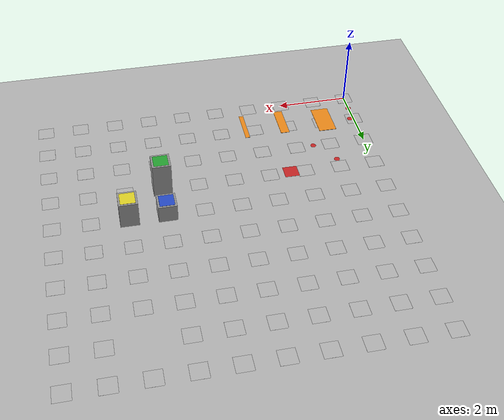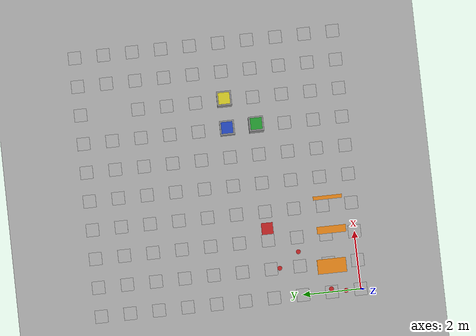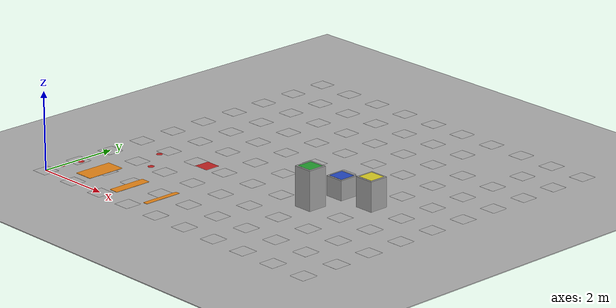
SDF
<sdf version="1.7">
 <world name="default">
  <model name="aruco_2_99">
   <static>1</static>
   <link name="aruco_2_99_link">
    <visual name="visual_marker_2_0">
     <pose>0 9 0 0 -0 1.5708</pose>
     <cast_shadows>0</cast_shadows>
     <geometry><box><size>0.44 0.44 0.001</size></box></geometry>
     <material>
      <script>
       <uri>model://aruco_cmit_txt/materials/scripts</uri>
       <uri>model://aruco_cmit_txt/materials/textures</uri>
       <name>aruco/marker_2_0</name>
      </script>
     </material>
    </visual>
    <visual name="visual_marker_2_1">
     <pose>1 9 0 0 -0 1.5708</pose>
     <cast_shadows>0</cast_shadows>
     <geometry><box><size>0.44 0.44 0.001</size></box></geometry>
     <material>
      <script>
       <uri>model://aruco_cmit_txt/materials/scripts</uri>
       <uri>model://aruco_cmit_txt/materials/textures</uri>
       <name>aruco/marker_2_1</name>
      </script>
     </material>
    </visual>
    <visual name="visual_marker_2_2">
     <pose>2 9 0 0 -0 1.5708</pose>
     <cast_shadows>0</cast_shadows>
     <geometry><box><size>0.44 0.44 0.001</size></box></geometry>
     <material>
      <script>
       <uri>model://aruco_cmit_txt/materials/scripts</uri>
       <uri>model://aruco_cmit_txt/materials/textures</uri>
       <name>aruco/marker_2_2</name>
      </script>
     </material>
    </visual>
    <visual name="visual_marker_2_3">
     <pose>3 9 0 0 -0 1.5708</pose>
     <cast_shadows>0</cast_shadows>
     <geometry><box><size>0.44 0.44 0.001</size></box></geometry>
     <material>
      <script>
       <uri>model://aruco_cmit_txt/materials/scripts</uri>
       <uri>model://aruco_cmit_txt/materials/textures</uri>
       <name>aruco/marker_2_3</name>
      </script>
     </material>
    </visual>
    <visual name="visual_marker_2_4">
     <pose>4 9 0 0 -0 1.5708</pose>
     <cast_shadows>0</cast_shadows>
     <geometry><box><size>0.44 0.44 0.001</size></box></geometry>
     <material>
      <script>
       <uri>model://aruco_cmit_txt/materials/scripts</uri>
       <uri>model://aruco_cmit_txt/materials/textures</uri>
       <name>aruco/marker_2_4</name>
      </script>
     </material>
    </visual>
    <visual name="visual_marker_2_5">
     <pose>5 9 0 0 -0 1.5708</pose>
     <cast_shadows>0</cast_shadows>
     <geometry><box><size>0.44 0.44 0.001</size></box></geometry>
     <material>
      <script>
       <uri>model://aruco_cmit_txt/materials/scripts</uri>
       <uri>model://aruco_cmit_txt/materials/textures</uri>
       <name>aruco/marker_2_5</name>
      </script>
     </material>
    </visual>
    <visual name="visual_marker_2_6">
     <pose>6 9 0 0 -0 1.5708</pose>
     <cast_shadows>0</cast_shadows>
     <geometry><box><size>0.44 0.44 0.001</size></box></geometry>
     <material>
      <script>
       <uri>model://aruco_cmit_txt/materials/scripts</uri>
       <uri>model://aruco_cmit_txt/materials/textures</uri>
       <name>aruco/marker_2_6</name>
      </script>
     </material>
    </visual>
    <visual name="visual_marker_2_7">
     <pose>7 9 0 0 -0 1.5708</pose>
     <cast_shadows>0</cast_shadows>
     <geometry><box><size>0.44 0.44 0.001</size></box></geometry>
     <material>
      <script>
       <uri>model://aruco_cmit_txt/materials/scripts</uri>
       <uri>model://aruco_cmit_txt/materials/textures</uri>
       <name>aruco/marker_2_7</name>
      </script>
     </material>
    </visual>
    <visual name="visual_marker_2_8">
     <pose>8 9 0 0 -0 1.5708</pose>
     <cast_shadows>0</cast_shadows>
     <geometry><box><size>0.44 0.44 0.001</size></box></geometry>
     <material>
      <script>
       <uri>model://aruco_cmit_txt/materials/scripts</uri>
       <uri>model://aruco_cmit_txt/materials/textures</uri>
       <name>aruco/marker_2_8</name>
      </script>
     </material>
    </visual>
    <visual name="visual_marker_2_9">
     <pose>9 9 0 0 -0 1.5708</pose>
     <cast_shadows>0</cast_shadows>
     <geometry><box><size>0.44 0.44 0.001</size></box></geometry>
     <material>
      <script>
       <uri>model://aruco_cmit_txt/materials/scripts</uri>
       <uri>model://aruco_cmit_txt/materials/textures</uri>
       <name>aruco/marker_2_9</name>
      </script>
     </material>
    </visual>
    <visual name="visual_marker_2_10">
     <pose>0 8 0 0 -0 1.5708</pose>
     <cast_shadows>0</cast_shadows>
     <geometry><box><size>0.44 0.44 0.001</size></box></geometry>
     <material>
      <script>
       <uri>model://aruco_cmit_txt/materials/scripts</uri>
       <uri>model://aruco_cmit_txt/materials/textures</uri>
       <name>aruco/marker_2_10</name>
      </script>
     </material>
    </visual>
    <visual name="visual_marker_2_11">
     <pose>1 8 0 0 -0 1.5708</pose>
     <cast_shadows>0</cast_shadows>
     <geometry><box><size>0.44 0.44 0.001</size></box></geometry>
     <material>
      <script>
       <uri>model://aruco_cmit_txt/materials/scripts</uri>
       <uri>model://aruco_cmit_txt/materials/textures</uri>
       <name>aruco/marker_2_11</name>
      </script>
     </material>
    </visual>
    <visual name="visual_marker_2_12">
     <pose>2 8 0 0 -0 1.5708</pose>
     <cast_shadows>0</cast_shadows>
     <geometry><box><size>0.44 0.44 0.001</size></box></geometry>
     <material>
      <script>
       <uri>model://aruco_cmit_txt/materials/scripts</uri>
       <uri>model://aruco_cmit_txt/materials/textures</uri>
       <name>aruco/marker_2_12</name>
      </script>
     </material>
    </visual>
    <visual name="visual_marker_2_13">
     <pose>3 8 0 0 -0 1.5708</pose>
     <cast_shadows>0</cast_shadows>
     <geometry><box><size>0.44 0.44 0.001</size></box></geometry>
     <material>
      <script>
       <uri>model://aruco_cmit_txt/materials/scripts</uri>
       <uri>model://aruco_cmit_txt/materials/textures</uri>
       <name>aruco/marker_2_13</name>
      </script>
     </material>
    </visual>
    <visual name="visual_marker_2_14">
     <pose>4 8 0 0 -0 1.5708</pose>
     <cast_shadows>0</cast_shadows>
     <geometry><box><size>0.44 0.44 0.001</size></box></geometry>
     <material>
      <script>
       <uri>model://aruco_cmit_txt/materials/scripts</uri>
       <uri>model://aruco_cmit_txt/materials/textures</uri>
       <name>aruco/marker_2_14</name>
      </script>
     </material>
    </visual>
    <visual name="visual_marker_2_15">
     <pose>5 8 0 0 -0 1.5708</pose>
     <cast_shadows>0</cast_shadows>
     <geometry><box><size>0.44 0.44 0.001</size></box></geometry>
     <material>
      <script>
       <uri>model://aruco_cmit_txt/materials/scripts</uri>
       <uri>model://aruco_cmit_txt/materials/textures</uri>
       <name>aruco/marker_2_15</name>
      </script>
     </material>
    </visual>
    <visual name="visual_marker_2_16">
     <pose>6 8 0 0 -0 1.5708</pose>
     <cast_shadows>0</cast_shadows>
     <geometry><box><size>0.44 0.44 0.001</size></box></geometry>
     <material>
      <script>
       <uri>model://aruco_cmit_txt/materials/scripts</uri>
       <uri>model://aruco_cmit_txt/materials/textures</uri>
       <name>aruco/marker_2_16</name>
      </script>
     </material>
    </visual>
    <visual name="visual_marker_2_18">
     <pose>8 8 0 0 -0 1.5708</pose>
     <cast_shadows>0</cast_shadows>
     <geometry><box><size>0.44 0.44 0.001</size></box></geometry>
     <material>
      <script>
       <uri>model://aruco_cmit_txt/materials/scripts</uri>
       <uri>model://aruco_cmit_txt/materials/textures</uri>
       <name>aruco/marker_2_18</name>
      </script>
     </material>
    </visual>
    <visual name="visual_marker_2_19">
     <pose>9 8 0 0 -0 1.5708</pose>
     <cast_shadows>0</cast_shadows>
     <geometry><box><size>0.44 0.44 0.001</size></box></geometry>
     <material>
      <script>
       <uri>model://aruco_cmit_txt/materials/scripts</uri>
       <uri>model://aruco_cmit_txt/materials/textures</uri>
       <name>aruco/marker_2_19</name>
      </script>
     </material>
    </visual>
    <visual name="visual_marker_2_20">
     <pose>0 7 0 0 -0 1.5708</pose>
     <cast_shadows>0</cast_shadows>
     <geometry><box><size>0.44 0.44 0.001</size></box></geometry>
     <material>
      <script>
       <uri>model://aruco_cmit_txt/materials/scripts</uri>
       <uri>model://aruco_cmit_txt/materials/textures</uri>
       <name>aruco/marker_2_20</name>
      </script>
     </material>
    </visual>
    <visual name="visual_marker_2_21">
     <pose>1 7 0 0 -0 1.5708</pose>
     <cast_shadows>0</cast_shadows>
     <geometry><box><size>0.44 0.44 0.001</size></box></geometry>
     <material>
      <script>
       <uri>model://aruco_cmit_txt/materials/scripts</uri>
       <uri>model://aruco_cmit_txt/materials/textures</uri>
       <name>aruco/marker_2_21</name>
      </script>
     </material>
    </visual>
    <visual name="visual_marker_2_22">
     <pose>2 7 0 0 -0 1.5708</pose>
     <cast_shadows>0</cast_shadows>
     <geometry><box><size>0.44 0.44 0.001</size></box></geometry>
     <material>
      <script>
       <uri>model://aruco_cmit_txt/materials/scripts</uri>
       <uri>model://aruco_cmit_txt/materials/textures</uri>
       <name>aruco/marker_2_22</name>
      </script>
     </material>
    </visual>
    <visual name="visual_marker_2_23">
     <pose>3 7 0 0 -0 1.5708</pose>
     <cast_shadows>0</cast_shadows>
     <geometry><box><size>0.44 0.44 0.001</size></box></geometry>
     <material>
      <script>
       <uri>model://aruco_cmit_txt/materials/scripts</uri>
       <uri>model://aruco_cmit_txt/materials/textures</uri>
       <name>aruco/marker_2_23</name>
      </script>
     </material>
    </visual>
    <visual name="visual_marker_2_24">
     <pose>4 7 0 0 -0 1.5708</pose>
     <cast_shadows>0</cast_shadows>
     <geometry><box><size>0.44 0.44 0.001</size></box></geometry>
     <material>
      <script>
       <uri>model://aruco_cmit_txt/materials/scripts</uri>
       <uri>model://aruco_cmit_txt/materials/textures</uri>
       <name>aruco/marker_2_24</name>
      </script>
     </material>
    </visual>
    <visual name="visual_marker_2_25">
     <pose>5 7 0 0 -0 1.5708</pose>
     <cast_shadows>0</cast_shadows>
     <geometry><box><size>0.44 0.44 0.001</size></box></geometry>
     <material>
      <script>
       <uri>model://aruco_cmit_txt/materials/scripts</uri>
       <uri>model://aruco_cmit_txt/materials/textures</uri>
       <name>aruco/marker_2_25</name>
      </script>
     </material>
    </visual>
    <visual name="visual_marker_2_26">
     <pose>6 7 0 0 -0 1.5708</pose>
     <cast_shadows>0</cast_shadows>
     <geometry><box><size>0.44 0.44 0.001</size></box></geometry>
     <material>
      <script>
       <uri>model://aruco_cmit_txt/materials/scripts</uri>
       <uri>model://aruco_cmit_txt/materials/textures</uri>
       <name>aruco/marker_2_26</name>
      </script>
     </material>
    </visual>
    <visual name="visual_marker_2_27">
     <pose>7 7 0 0 -0 1.5708</pose>
     <cast_shadows>0</cast_shadows>
     <geometry><box><size>0.44 0.44 0.001</size></box></geometry>
     <material>
      <script>
       <uri>model://aruco_cmit_txt/materials/scripts</uri>
       <uri>model://aruco_cmit_txt/materials/textures</uri>
       <name>aruco/marker_2_27</name>
      </script>
     </material>
    </visual>
    <visual name="visual_marker_2_28">
     <pose>8 7 0 0 -0 1.5708</pose>
     <cast_shadows>0</cast_shadows>
     <geometry><box><size>0.44 0.44 0.001</size></box></geometry>
     <material>
      <script>
       <uri>model://aruco_cmit_txt/materials/scripts</uri>
       <uri>model://aruco_cmit_txt/materials/textures</uri>
       <name>aruco/marker_2_28</name>
      </script>
     </material>
    </visual>
    <visual name="visual_marker_2_29">
     <pose>9 7 0 0 -0 1.5708</pose>
     <cast_shadows>0</cast_shadows>
     <geometry><box><size>0.44 0.44 0.001</size></box></geometry>
     <material>
      <script>
       <uri>model://aruco_cmit_txt/materials/scripts</uri>
       <uri>model://aruco_cmit_txt/materials/textures</uri>
       <name>aruco/marker_2_29</name>
      </script>
     </material>
    </visual>
    <visual name="visual_marker_2_30">
     <pose>0 6 0 0 -0 1.5708</pose>
     <cast_shadows>0</cast_shadows>
     <geometry><box><size>0.44 0.44 0.001</size></box></geometry>
     <material>
      <script>
       <uri>model://aruco_cmit_txt/materials/scripts</uri>
       <uri>model://aruco_cmit_txt/materials/textures</uri>
       <name>aruco/marker_2_30</name>
      </script>
     </material>
    </visual>
    <visual name="visual_marker_2_31">
     <pose>1 6 0 0 -0 1.5708</pose>
     <cast_shadows>0</cast_shadows>
     <geometry><box><size>0.44 0.44 0.001</size></box></geometry>
     <material>
      <script>
       <uri>model://aruco_cmit_txt/materials/scripts</uri>
       <uri>model://aruco_cmit_txt/materials/textures</uri>
       <name>aruco/marker_2_31</name>
      </script>
     </material>
    </visual>
    <visual name="visual_marker_2_32">
     <pose>2 6 0 0 -0 1.5708</pose>
     <cast_shadows>0</cast_shadows>
     <geometry><box><size>0.44 0.44 0.001</size></box></geometry>
     <material>
      <script>
       <uri>model://aruco_cmit_txt/materials/scripts</uri>
       <uri>model://aruco_cmit_txt/materials/textures</uri>
       <name>aruco/marker_2_32</name>
      </script>
     </material>
    </visual>
    <visual name="visual_marker_2_33">
     <pose>3 6 0 0 -0 1.5708</pose>
     <cast_shadows>0</cast_shadows>
     <geometry><box><size>0.44 0.44 0.001</size></box></geometry>
     <material>
      <script>
       <uri>model://aruco_cmit_txt/materials/scripts</uri>
       <uri>model://aruco_cmit_txt/materials/textures</uri>
       <name>aruco/marker_2_33</name>
      </script>
     </material>
    </visual>
    <visual name="visual_marker_2_34">
     <pose>4 6 0 0 -0 1.5708</pose>
     <cast_shadows>0</cast_shadows>
     <geometry><box><size>0.44 0.44 0.001</size></box></geometry>
     <material>
      <script>
       <uri>model://aruco_cmit_txt/materials/scripts</uri>
       <uri>model://aruco_cmit_txt/materials/textures</uri>
       <name>aruco/marker_2_34</name>
      </script>
     </material>
    </visual>
    <visual name="visual_marker_2_35">
     <pose>5 6 0 0 -0 1.5708</pose>
     <cast_shadows>0</cast_shadows>
     <geometry><box><size>0.44 0.44 0.001</size></box></geometry>
     <material>
      <script>
       <uri>model://aruco_cmit_txt/materials/scripts</uri>
       <uri>model://aruco_cmit_txt/materials/textures</uri>
       <name>aruco/marker_2_35</name>
      </script>
     </material>
    </visual>
    <visual name="visual_marker_2_36">
     <pose>6 6 0 0 -0 1.5708</pose>
     <cast_shadows>0</cast_shadows>
     <geometry><box><size>0.44 0.44 0.001</size></box></geometry>
     <material>
      <script>
       <uri>model://aruco_cmit_txt/materials/scripts</uri>
       <uri>model://aruco_cmit_txt/materials/textures</uri>
       <name>aruco/marker_2_36</name>
      </script>
     </material>
    </visual>
    <visual name="visual_marker_2_37">
     <pose>7 6 0 0 -0 1.5708</pose>
     <cast_shadows>0</cast_shadows>
     <geometry><box><size>0.44 0.44 0.001</size></box></geometry>
     <material>
      <script>
       <uri>model://aruco_cmit_txt/materials/scripts</uri>
       <uri>model://aruco_cmit_txt/materials/textures</uri>
       <name>aruco/marker_2_37</name>
      </script>
     </material>
    </visual>
    <visual name="visual_marker_2_38">
     <pose>8 6 0 0 -0 1.5708</pose>
     <cast_shadows>0</cast_shadows>
     <geometry><box><size>0.44 0.44 0.001</size></box></geometry>
     <material>
      <script>
       <uri>model://aruco_cmit_txt/materials/scripts</uri>
       <uri>model://aruco_cmit_txt/materials/textures</uri>
       <name>aruco/marker_2_38</name>
      </script>
     </material>
    </visual>
    <visual name="visual_marker_2_39">
     <pose>9 6 0 0 -0 1.5708</pose>
     <cast_shadows>0</cast_shadows>
     <geometry><box><size>0.44 0.44 0.001</size></box></geometry>
     <material>
      <script>
       <uri>model://aruco_cmit_txt/materials/scripts</uri>
       <uri>model://aruco_cmit_txt/materials/textures</uri>
       <name>aruco/marker_2_39</name>
      </script>
     </material>
    </visual>
    <visual name="visual_marker_2_40">
     <pose>0 5 0 0 -0 1.5708</pose>
     <cast_shadows>0</cast_shadows>
     <geometry><box><size>0.44 0.44 0.001</size></box></geometry>
     <material>
      <script>
       <uri>model://aruco_cmit_txt/materials/scripts</uri>
       <uri>model://aruco_cmit_txt/materials/textures</uri>
       <name>aruco/marker_2_40</name>
      </script>
     </material>
    </visual>
    <visual name="visual_marker_2_41">
     <pose>1 5 0 0 -0 1.5708</pose>
     <cast_shadows>0</cast_shadows>
     <geometry><box><size>0.44 0.44 0.001</size></box></geometry>
     <material>
      <script>
       <uri>model://aruco_cmit_txt/materials/scripts</uri>
       <uri>model://aruco_cmit_txt/materials/textures</uri>
       <name>aruco/marker_2_41</name>
      </script>
     </material>
    </visual>
    <visual name="visual_marker_2_42">
     <pose>2 5 0 0 -0 1.5708</pose>
     <cast_shadows>0</cast_shadows>
     <geometry><box><size>0.44 0.44 0.001</size></box></geometry>
     <material>
      <script>
       <uri>model://aruco_cmit_txt/materials/scripts</uri>
       <uri>model://aruco_cmit_txt/materials/textures</uri>
       <name>aruco/marker_2_42</name>
      </script>
     </material>
    </visual>
    <visual name="visual_marker_2_43">
     <pose>3 5 0 0 -0 1.5708</pose>
     <cast_shadows>0</cast_shadows>
     <geometry><box><size>0.44 0.44 0.001</size></box></geometry>
     <material>
      <script>
       <uri>model://aruco_cmit_txt/materials/scripts</uri>
       <uri>model://aruco_cmit_txt/materials/textures</uri>
       <name>aruco/marker_2_43</name>
      </script>
     </material>
    </visual>
    <visual name="visual_marker_2_44">
     <pose>4 5 0 0 -0 1.5708</pose>
     <cast_shadows>0</cast_shadows>
     <geometry><box><size>0.44 0.44 0.001</size></box></geometry>
     <material>
      <script>
       <uri>model://aruco_cmit_txt/materials/scripts</uri>
       <uri>model://aruco_cmit_txt/materials/textures</uri>
       <name>aruco/marker_2_44</name>
      </script>
     </material>
    </visual>
    <visual name="visual_marker_2_45">
     <pose>5 5 0 0 -0 1.5708</pose>
     <cast_shadows>0</cast_shadows>
     <geometry><box><size>0.44 0.44 0.001</size></box></geometry>
     <material>
      <script>
       <uri>model://aruco_cmit_txt/materials/scripts</uri>
       <uri>model://aruco_cmit_txt/materials/textures</uri>
       <name>aruco/marker_2_45</name>
      </script>
     </material>
    </visual>
    <visual name="visual_marker_2_46">
     <pose>6 5 0 0 -0 1.5708</pose>
     <cast_shadows>0</cast_shadows>
     <geometry><box><size>0.44 0.44 0.001</size></box></geometry>
     <material>
      <script>
       <uri>model://aruco_cmit_txt/materials/scripts</uri>
       <uri>model://aruco_cmit_txt/materials/textures</uri>
       <name>aruco/marker_2_46</name>
      </script>
     </material>
    </visual>
    <visual name="visual_marker_2_47">
     <pose>7 5 0 0 -0 1.5708</pose>
     <cast_shadows>0</cast_shadows>
     <geometry><box><size>0.44 0.44 0.001</size></box></geometry>
     <material>
      <script>
       <uri>model://aruco_cmit_txt/materials/scripts</uri>
       <uri>model://aruco_cmit_txt/materials/textures</uri>
       <name>aruco/marker_2_47</name>
      </script>
     </material>
    </visual>
    <visual name="visual_marker_2_48">
     <pose>8 5 0 0 -0 1.5708</pose>
     <cast_shadows>0</cast_shadows>
     <geometry><box><size>0.44 0.44 0.001</size></box></geometry>
     <material>
      <script>
       <uri>model://aruco_cmit_txt/materials/scripts</uri>
       <uri>model://aruco_cmit_txt/materials/textures</uri>
       <name>aruco/marker_2_48</name>
      </script>
     </material>
    </visual>
    <visual name="visual_marker_2_49">
     <pose>9 5 0 0 -0 1.5708</pose>
     <cast_shadows>0</cast_shadows>
     <geometry><box><size>0.44 0.44 0.001</size></box></geometry>
     <material>
      <script>
       <uri>model://aruco_cmit_txt/materials/scripts</uri>
       <uri>model://aruco_cmit_txt/materials/textures</uri>
       <name>aruco/marker_2_49</name>
      </script>
     </material>
    </visual>
    <visual name="visual_marker_2_50">
     <pose>0 4 0 0 -0 1.5708</pose>
     <cast_shadows>0</cast_shadows>
     <geometry><box><size>0.44 0.44 0.001</size></box></geometry>
     <material>
      <script>
       <uri>model://aruco_cmit_txt/materials/scripts</uri>
       <uri>model://aruco_cmit_txt/materials/textures</uri>
       <name>aruco/marker_2_50</name>
      </script>
     </material>
    </visual>
    <visual name="visual_marker_2_51">
     <pose>1 4 0 0 -0 1.5708</pose>
     <cast_shadows>0</cast_shadows>
     <geometry><box><size>0.44 0.44 0.001</size></box></geometry>
     <material>
      <script>
       <uri>model://aruco_cmit_txt/materials/scripts</uri>
       <uri>model://aruco_cmit_txt/materials/textures</uri>
       <name>aruco/marker_2_51</name>
      </script>
     </material>
    </visual>
    <visual name="visual_marker_2_52">
     <pose>2 4 0 0 -0 1.5708</pose>
     <cast_shadows>0</cast_shadows>
     <geometry><box><size>0.44 0.44 0.001</size></box></geometry>
     <material>
      <script>
       <uri>model://aruco_cmit_txt/materials/scripts</uri>
       <uri>model://aruco_cmit_txt/materials/textures</uri>
       <name>aruco/marker_2_52</name>
      </script>
     </material>
    </visual>
    <visual name="visual_marker_2_53">
     <pose>3 4 0 0 -0 1.5708</pose>
     <cast_shadows>0</cast_shadows>
     <geometry><box><size>0.44 0.44 0.001</size></box></geometry>
     <material>
      <script>
       <uri>model://aruco_cmit_txt/materials/scripts</uri>
       <uri>model://aruco_cmit_txt/materials/textures</uri>
       <name>aruco/marker_2_53</name>
      </script>
     </material>
    </visual>
    <visual name="visual_marker_2_54">
     <pose>4 4 0 0 -0 1.5708</pose>
     <cast_shadows>0</cast_shadows>
     <geometry><box><size>0.44 0.44 0.001</size></box></geometry>
     <material>
      <script>
       <uri>model://aruco_cmit_txt/materials/scripts</uri>
       <uri>model://aruco_cmit_txt/materials/textures</uri>
       <name>aruco/marker_2_54</name>
      </script>
     </material>
    </visual>
    <visual name="visual_marker_2_55">
     <pose>5 4 0 0 -0 1.5708</pose>
     <cast_shadows>0</cast_shadows>
     <geometry><box><size>0.44 0.44 0.001</size></box></geometry>
     <material>
      <script>
       <uri>model://aruco_cmit_txt/materials/scripts</uri>
       <uri>model://aruco_cmit_txt/materials/textures</uri>
       <name>aruco/marker_2_55</name>
      </script>
     </material>
    </visual>
    <visual name="visual_marker_2_56">
     <pose>6 4 0 0 -0 1.5708</pose>
     <cast_shadows>0</cast_shadows>
     <geometry><box><size>0.44 0.44 0.001</size></box></geometry>
     <material>
      <script>
       <uri>model://aruco_cmit_txt/materials/scripts</uri>
       <uri>model://aruco_cmit_txt/materials/textures</uri>
       <name>aruco/marker_2_56</name>
      </script>
     </material>
    </visual>
    <visual name="visual_marker_2_57">
     <pose>7 4 0 0 -0 1.5708</pose>
     <cast_shadows>0</cast_shadows>
     <geometry><box><size>0.44 0.44 0.001</size></box></geometry>
     <material>
      <script>
       <uri>model://aruco_cmit_txt/materials/scripts</uri>
       <uri>model://aruco_cmit_txt/materials/textures</uri>
       <name>aruco/marker_2_57</name>
      </script>
     </material>
    </visual>
    <visual name="visual_marker_2_58">
     <pose>8 4 0 0 -0 1.5708</pose>
     <cast_shadows>0</cast_shadows>
     <geometry><box><size>0.44 0.44 0.001</size></box></geometry>
     <material>
      <script>
       <uri>model://aruco_cmit_txt/materials/scripts</uri>
       <uri>model://aruco_cmit_txt/materials/textures</uri>
       <name>aruco/marker_2_58</name>
      </script>
     </material>
    </visual>
    <visual name="visual_marker_2_59">
     <pose>9 4 0 0 -0 1.5708</pose>
     <cast_shadows>0</cast_shadows>
     <geometry><box><size>0.44 0.44 0.001</size></box></geometry>
     <material>
      <script>
       <uri>model://aruco_cmit_txt/materials/scripts</uri>
       <uri>model://aruco_cmit_txt/materials/textures</uri>
       <name>aruco/marker_2_59</name>
      </script>
     </material>
    </visual>
    <visual name="visual_marker_2_60">
     <pose>0 3 0 0 -0 1.5708</pose>
     <cast_shadows>0</cast_shadows>
     <geometry><box><size>0.44 0.44 0.001</size></box></geometry>
     <material>
      <script>
       <uri>model://aruco_cmit_txt/materials/scripts</uri>
       <uri>model://aruco_cmit_txt/materials/textures</uri>
       <name>aruco/marker_2_60</name>
      </script>
     </material>
    </visual>
    <visual name="visual_marker_2_61">
     <pose>1 3 0 0 -0 1.5708</pose>
     <cast_shadows>0</cast_shadows>
     <geometry><box><size>0.44 0.44 0.001</size></box></geometry>
     <material>
      <script>
       <uri>model://aruco_cmit_txt/materials/scripts</uri>
       <uri>model://aruco_cmit_txt/materials/textures</uri>
       <name>aruco/marker_2_61</name>
      </script>
     </material>
    </visual>
    <visual name="visual_marker_2_62">
     <pose>2 3 0 0 -0 1.5708</pose>
     <cast_shadows>0</cast_shadows>
     <geometry><box><size>0.44 0.44 0.001</size></box></geometry>
     <material>
      <script>
       <uri>model://aruco_cmit_txt/materials/scripts</uri>
       <uri>model://aruco_cmit_txt/materials/textures</uri>
       <name>aruco/marker_2_62</name>
      </script>
     </material>
    </visual>
    <visual name="visual_marker_2_63">
     <pose>3 3 0 0 -0 1.5708</pose>
     <cast_shadows>0</cast_shadows>
     <geometry><box><size>0.44 0.44 0.001</size></box></geometry>
     <material>
      <script>
       <uri>model://aruco_cmit_txt/materials/scripts</uri>
       <uri>model://aruco_cmit_txt/materials/textures</uri>
       <name>aruco/marker_2_63</name>
      </script>
     </material>
    </visual>
    <visual name="visual_marker_2_64">
     <pose>4 3 0 0 -0 1.5708</pose>
     <cast_shadows>0</cast_shadows>
     <geometry><box><size>0.44 0.44 0.001</size></box></geometry>
     <material>
      <script>
       <uri>model://aruco_cmit_txt/materials/scripts</uri>
       <uri>model://aruco_cmit_txt/materials/textures</uri>
       <name>aruco/marker_2_64</name>
      </script>
     </material>
    </visual>
    <visual name="visual_marker_2_65">
     <pose>5 3 0 0 -0 1.5708</pose>
     <cast_shadows>0</cast_shadows>
     <geometry><box><size>0.44 0.44 0.001</size></box></geometry>
     <material>
      <script>
       <uri>model://aruco_cmit_txt/materials/scripts</uri>
       <uri>model://aruco_cmit_txt/materials/textures</uri>
       <name>aruco/marker_2_65</name>
      </script>
     </material>
    </visual>
    <visual name="visual_marker_2_66">
     <pose>6 3 0 0 -0 1.5708</pose>
     <cast_shadows>0</cast_shadows>
     <geometry><box><size>0.44 0.44 0.001</size></box></geometry>
     <material>
      <script>
       <uri>model://aruco_cmit_txt/materials/scripts</uri>
       <uri>model://aruco_cmit_txt/materials/textures</uri>
       <name>aruco/marker_2_66</name>
      </script>
     </material>
    </visual>
    <visual name="visual_marker_2_67">
     <pose>7 3 0 0 -0 1.5708</pose>
     <cast_shadows>0</cast_shadows>
     <geometry><box><size>0.44 0.44 0.001</size></box></geometry>
     <material>
      <script>
       <uri>model://aruco_cmit_txt/materials/scripts</uri>
       <uri>model://aruco_cmit_txt/materials/textures</uri>
       <name>aruco/marker_2_67</name>
      </script>
     </material>
    </visual>
    <visual name="visual_marker_2_68">
     <pose>8 3 0 0 -0 1.5708</pose>
     <cast_shadows>0</cast_shadows>
     <geometry><box><size>0.44 0.44 0.001</size></box></geometry>
     <material>
      <script>
       <uri>model://aruco_cmit_txt/materials/scripts</uri>
       <uri>model://aruco_cmit_txt/materials/textures</uri>
       <name>aruco/marker_2_68</name>
      </script>
     </material>
    </visual>
    <visual name="visual_marker_2_69">
     <pose>9 3 0 0 -0 1.5708</pose>
     <cast_shadows>0</cast_shadows>
     <geometry><box><size>0.44 0.44 0.001</size></box></geometry>
     <material>
      <script>
       <uri>model://aruco_cmit_txt/materials/scripts</uri>
       <uri>model://aruco_cmit_txt/materials/textures</uri>
       <name>aruco/marker_2_69</name>
      </script>
     </material>
    </visual>
    <visual name="visual_marker_2_70">
     <pose>0 2 0 0 -0 1.5708</pose>
     <cast_shadows>0</cast_shadows>
     <geometry><box><size>0.44 0.44 0.001</size></box></geometry>
     <material>
      <script>
       <uri>model://aruco_cmit_txt/materials/scripts</uri>
       <uri>model://aruco_cmit_txt/materials/textures</uri>
       <name>aruco/marker_2_70</name>
      </script>
     </material>
    </visual>
    <visual name="visual_marker_2_71">
     <pose>1 2 0 0 -0 1.5708</pose>
     <cast_shadows>0</cast_shadows>
     <geometry><box><size>0.44 0.44 0.001</size></box></geometry>
     <material>
      <script>
       <uri>model://aruco_cmit_txt/materials/scripts</uri>
       <uri>model://aruco_cmit_txt/materials/textures</uri>
       <name>aruco/marker_2_71</name>
      </script>
     </material>
    </visual>
    <visual name="visual_marker_2_72">
     <pose>2 2 0 0 -0 1.5708</pose>
     <cast_shadows>0</cast_shadows>
     <geometry><box><size>0.44 0.44 0.001</size></box></geometry>
     <material>
      <script>
       <uri>model://aruco_cmit_txt/materials/scripts</uri>
       <uri>model://aruco_cmit_txt/materials/textures</uri>
       <name>aruco/marker_2_72</name>
      </script>
     </material>
    </visual>
    <visual name="visual_marker_2_73">
     <pose>3 2 0 0 -0 1.5708</pose>
     <cast_shadows>0</cast_shadows>
     <geometry><box><size>0.44 0.44 0.001</size></box></geometry>
     <material>
      <script>
       <uri>model://aruco_cmit_txt/materials/scripts</uri>
       <uri>model://aruco_cmit_txt/materials/textures</uri>
       <name>aruco/marker_2_73</name>
      </script>
     </material>
    </visual>
    <visual name="visual_marker_2_74">
     <pose>4 2 0 0 -0 1.5708</pose>
     <cast_shadows>0</cast_shadows>
     <geometry><box><size>0.44 0.44 0.001</size></box></geometry>
     <material>
      <script>
       <uri>model://aruco_cmit_txt/materials/scripts</uri>
       <uri>model://aruco_cmit_txt/materials/textures</uri>
       <name>aruco/marker_2_74</name>
      </script>
     </material>
    </visual>
    <visual name="visual_marker_2_75">
     <pose>5 2 0 0 -0 1.5708</pose>
     <cast_shadows>0</cast_shadows>
     <geometry><box><size>0.44 0.44 0.001</size></box></geometry>
     <material>
      <script>
       <uri>model://aruco_cmit_txt/materials/scripts</uri>
       <uri>model://aruco_cmit_txt/materials/textures</uri>
       <name>aruco/marker_2_75</name>
      </script>
     </material>
    </visual>
    <visual name="visual_marker_2_76">
     <pose>6 2 0 0 -0 1.5708</pose>
     <cast_shadows>0</cast_shadows>
     <geometry><box><size>0.44 0.44 0.001</size></box></geometry>
     <material>
      <script>
       <uri>model://aruco_cmit_txt/materials/scripts</uri>
       <uri>model://aruco_cmit_txt/materials/textures</uri>
       <name>aruco/marker_2_76</name>
      </script>
     </material>
    </visual>
    <visual name="visual_marker_2_77">
     <pose>7 2 0 0 -0 1.5708</pose>
     <cast_shadows>0</cast_shadows>
     <geometry><box><size>0.44 0.44 0.001</size></box></geometry>
     <material>
      <script>
       <uri>model://aruco_cmit_txt/materials/scripts</uri>
       <uri>model://aruco_cmit_txt/materials/textures</uri>
       <name>aruco/marker_2_77</name>
      </script>
     </material>
    </visual>
    <visual name="visual_marker_2_78">
     <pose>8 2 0 0 -0 1.5708</pose>
     <cast_shadows>0</cast_shadows>
     <geometry><box><size>0.44 0.44 0.001</size></box></geometry>
     <material>
      <script>
       <uri>model://aruco_cmit_txt/materials/scripts</uri>
       <uri>model://aruco_cmit_txt/materials/textures</uri>
       <name>aruco/marker_2_78</name>
      </script>
     </material>
    </visual>
    <visual name="visual_marker_2_79">
     <pose>9 2 0 0 -0 1.5708</pose>
     <cast_shadows>0</cast_shadows>
     <geometry><box><size>0.44 0.44 0.001</size></box></geometry>
     <material>
      <script>
       <uri>model://aruco_cmit_txt/materials/scripts</uri>
       <uri>model://aruco_cmit_txt/materials/textures</uri>
       <name>aruco/marker_2_79</name>
      </script>
     </material>
    </visual>
    <visual name="visual_marker_2_80">
     <pose>0 1 0 0 -0 1.5708</pose>
     <cast_shadows>0</cast_shadows>
     <geometry><box><size>0.44 0.44 0.001</size></box></geometry>
     <material>
      <script>
       <uri>model://aruco_cmit_txt/materials/scripts</uri>
       <uri>model://aruco_cmit_txt/materials/textures</uri>
       <name>aruco/marker_2_80</name>
      </script>
     </material>
    </visual>
    <visual name="visual_marker_2_81">
     <pose>1 1 0 0 -0 1.5708</pose>
     <cast_shadows>0</cast_shadows>
     <geometry><box><size>0.44 0.44 0.001</size></box></geometry>
     <material>
      <script>
       <uri>model://aruco_cmit_txt/materials/scripts</uri>
       <uri>model://aruco_cmit_txt/materials/textures</uri>
       <name>aruco/marker_2_81</name>
      </script>
     </material>
    </visual>
    <visual name="visual_marker_2_82">
     <pose>2 1 0 0 -0 1.5708</pose>
     <cast_shadows>0</cast_shadows>
     <geometry><box><size>0.44 0.44 0.001</size></box></geometry>
     <material>
      <script>
       <uri>model://aruco_cmit_txt/materials/scripts</uri>
       <uri>model://aruco_cmit_txt/materials/textures</uri>
       <name>aruco/marker_2_82</name>
      </script>
     </material>
    </visual>
    <visual name="visual_marker_2_83">
     <pose>3 1 0 0 -0 1.5708</pose>
     <cast_shadows>0</cast_shadows>
     <geometry><box><size>0.44 0.44 0.001</size></box></geometry>
     <material>
      <script>
       <uri>model://aruco_cmit_txt/materials/scripts</uri>
       <uri>model://aruco_cmit_txt/materials/textures</uri>
       <name>aruco/marker_2_83</name>
      </script>
     </material>
    </visual>
    <visual name="visual_marker_2_84">
     <pose>4 1 0 0 -0 1.5708</pose>
     <cast_shadows>0</cast_shadows>
     <geometry><box><size>0.44 0.44 0.001</size></box></geometry>
     <material>
      <script>
       <uri>model://aruco_cmit_txt/materials/scripts</uri>
       <uri>model://aruco_cmit_txt/materials/textures</uri>
       <name>aruco/marker_2_84</name>
      </script>
     </material>
    </visual>
    <visual name="visual_marker_2_85">
     <pose>5 1 0 0 -0 1.5708</pose>
     <cast_shadows>0</cast_shadows>
     <geometry><box><size>0.44 0.44 0.001</size></box></geometry>
     <material>
      <script>
       <uri>model://aruco_cmit_txt/materials/scripts</uri>
       <uri>model://aruco_cmit_txt/materials/textures</uri>
       <name>aruco/marker_2_85</name>
      </script>
     </material>
    </visual>
    <visual name="visual_marker_2_86">
     <pose>6 1 0 0 -0 1.5708</pose>
     <cast_shadows>0</cast_shadows>
     <geometry><box><size>0.44 0.44 0.001</size></box></geometry>
     <material>
      <script>
       <uri>model://aruco_cmit_txt/materials/scripts</uri>
       <uri>model://aruco_cmit_txt/materials/textures</uri>
       <name>aruco/marker_2_86</name>
      </script>
     </material>
    </visual>
    <visual name="visual_marker_2_87">
     <pose>7 1 0 0 -0 1.5708</pose>
     <cast_shadows>0</cast_shadows>
     <geometry><box><size>0.44 0.44 0.001</size></box></geometry>
     <material>
      <script>
       <uri>model://aruco_cmit_txt/materials/scripts</uri>
       <uri>model://aruco_cmit_txt/materials/textures</uri>
       <name>aruco/marker_2_87</name>
      </script>
     </material>
    </visual>
    <visual name="visual_marker_2_88">
     <pose>8 1 0 0 -0 1.5708</pose>
     <cast_shadows>0</cast_shadows>
     <geometry><box><size>0.44 0.44 0.001</size></box></geometry>
     <material>
      <script>
       <uri>model://aruco_cmit_txt/materials/scripts</uri>
       <uri>model://aruco_cmit_txt/materials/textures</uri>
       <name>aruco/marker_2_88</name>
      </script>
     </material>
    </visual>
    <visual name="visual_marker_2_89">
     <pose>9 1 0 0 -0 1.5708</pose>
     <cast_shadows>0</cast_shadows>
     <geometry><box><size>0.44 0.44 0.001</size></box></geometry>
     <material>
      <script>
       <uri>model://aruco_cmit_txt/materials/scripts</uri>
       <uri>model://aruco_cmit_txt/materials/textures</uri>
       <name>aruco/marker_2_89</name>
      </script>
     </material>
    </visual>
    <visual name="visual_marker_2_90">
     <pose>0 0 0 0 -0 1.5708</pose>
     <cast_shadows>0</cast_shadows>
     <geometry><box><size>0.44 0.44 0.001</size></box></geometry>
     <material>
      <script>
       <uri>model://aruco_cmit_txt/materials/scripts</uri>
       <uri>model://aruco_cmit_txt/materials/textures</uri>
       <name>aruco/marker_2_90</name>
      </script>
     </material>
    </visual>
    <visual name="visual_marker_2_91">
     <pose>1 0 0 0 -0 1.5708</pose>
     <cast_shadows>0</cast_shadows>
     <geometry><box><size>0.44 0.44 0.001</size></box></geometry>
     <material>
      <script>
       <uri>model://aruco_cmit_txt/materials/scripts</uri>
       <uri>model://aruco_cmit_txt/materials/textures</uri>
       <name>aruco/marker_2_91</name>
      </script>
     </material>
    </visual>
    <visual name="visual_marker_2_92">
     <pose>2 0 0 0 -0 1.5708</pose>
     <cast_shadows>0</cast_shadows>
     <geometry><box><size>0.44 0.44 0.001</size></box></geometry>
     <material>
      <script>
       <uri>model://aruco_cmit_txt/materials/scripts</uri>
       <uri>model://aruco_cmit_txt/materials/textures</uri>
       <name>aruco/marker_2_92</name>
      </script>
     </material>
    </visual>
    <visual name="visual_marker_2_93">
     <pose>3 0 0 0 -0 1.5708</pose>
     <cast_shadows>0</cast_shadows>
     <geometry><box><size>0.44 0.44 0.001</size></box></geometry>
     <material>
      <script>
       <uri>model://aruco_cmit_txt/materials/scripts</uri>
       <uri>model://aruco_cmit_txt/materials/textures</uri>
       <name>aruco/marker_2_93</name>
      </script>
     </material>
    </visual>
    <visual name="visual_marker_2_94">
     <pose>4 0 0 0 -0 1.5708</pose>
     <cast_shadows>0</cast_shadows>
     <geometry><box><size>0.44 0.44 0.001</size></box></geometry>
     <material>
      <script>
       <uri>model://aruco_cmit_txt/materials/scripts</uri>
       <uri>model://aruco_cmit_txt/materials/textures</uri>
       <name>aruco/marker_2_94</name>
      </script>
     </material>
    </visual>
    <visual name="visual_marker_2_95">
     <pose>5 0 0 0 -0 1.5708</pose>
     <cast_shadows>0</cast_shadows>
     <geometry><box><size>0.44 0.44 0.001</size></box></geometry>
     <material>
      <script>
       <uri>model://aruco_cmit_txt/materials/scripts</uri>
       <uri>model://aruco_cmit_txt/materials/textures</uri>
       <name>aruco/marker_2_95</name>
      </script>
     </material>
    </visual>
    <visual name="visual_marker_2_96">
     <pose>6 0 0 0 -0 1.5708</pose>
     <cast_shadows>0</cast_shadows>
     <geometry><box><size>0.44 0.44 0.001</size></box></geometry>
     <material>
      <script>
       <uri>model://aruco_cmit_txt/materials/scripts</uri>
       <uri>model://aruco_cmit_txt/materials/textures</uri>
       <name>aruco/marker_2_96</name>
      </script>
     </material>
    </visual>
    <visual name="visual_marker_2_97">
     <pose>7 0 0 0 -0 1.5708</pose>
     <cast_shadows>0</cast_shadows>
     <geometry><box><size>0.44 0.44 0.001</size></box></geometry>
     <material>
      <script>
       <uri>model://aruco_cmit_txt/materials/scripts</uri>
       <uri>model://aruco_cmit_txt/materials/textures</uri>
       <name>aruco/marker_2_97</name>
      </script>
     </material>
    </visual>
    <visual name="visual_marker_2_98">
     <pose>8 0 0 0 -0 1.5708</pose>
     <cast_shadows>0</cast_shadows>
     <geometry><box><size>0.44 0.44 0.001</size></box></geometry>
     <material>
      <script>
       <uri>model://aruco_cmit_txt/materials/scripts</uri>
       <uri>model://aruco_cmit_txt/materials/textures</uri>
       <name>aruco/marker_2_98</name>
      </script>
     </material>
    </visual>
    <visual name="visual_marker_2_99">
     <pose>9 0 0 0 -0 1.5708</pose>
     <cast_shadows>0</cast_shadows>
     <geometry><box><size>0.44 0.44 0.001</size></box></geometry>
     <material>
      <script>
       <uri>model://aruco_cmit_txt/materials/scripts</uri>
       <uri>model://aruco_cmit_txt/materials/textures</uri>
       <name>aruco/marker_2_99</name>
      </script>
     </material>
    </visual>
   </link>
  </model>
  <light name="sun" type="directional">
   <pose>0 0 10 0 -0 0</pose>
   <diffuse>0.8 0.8 0.8 1</diffuse>
   <specular>0.2 0.2 0.2 1</specular>
   <attenuation>
    <range>1000</range>
    <constant>0.9</constant>
    <linear>0.01</linear>
    <quadratic>0.001</quadratic>
   </attenuation>
   <direction>-0.5 0.1 -0.9</direction>
   <spot><inner_angle>0</inner_angle><outer_angle>0</outer_angle><falloff>0</falloff></spot>
  </light>
  <model name="parquet_plane">
   <static>1</static>
   <link name="link">
    <collision name="collision"><geometry><box><size>200 200 0.02</size></box></geometry></collision>
    <visual name="visual">
     <cast_shadows>0</cast_shadows>
     <geometry><box><size>200 200 0.02</size></box></geometry>
     <material>
      <script>
       <uri>model://parquet_plane/materials/scripts</uri>
       <uri>model://parquet_plane/materials/textures</uri>
       <name>parquet</name>
      </script>
     </material>
    </visual>
   </link>
   <pose>0 0 -0.01 0 -0 0</pose>
  </model>
  <scene>
   <ambient>0.8 0.8 0.8 1</ambient>
   <background>0.8 0.9 1 1</background>
   <shadows>0</shadows>
   <grid>0</grid>
   <origin_visual>0</origin_visual>
  </scene>
  <model name="red1">
   <pose>2.40768 2.98404 0.010207 0 -0 0</pose>
   <link name="link">
    <collision name="collision"><geometry><box><size>0.4 0.4 0.001</size></box></geometry></collision>
    <visual name="visual">
     <geometry><box><size>0.4 0.4 0.001</size></box></geometry>
     <material>
      <script><name>Gazebo/Red</name><uri>file://media/materials/scripts/gazebo.material</uri></script>
     </material>
    </visual>
   </link>
   <static>1</static>
  </model>
  <model name="green1">
   <pose>6 3 1.001 0 -0 0</pose>
   <link name="link">
    <collision name="collision"><geometry><box><size>0.4 0.4 0.001</size></box></geometry></collision>
    <visual name="visual">
     <geometry><box><size>0.4 0.4 0.001</size></box></geometry>
     <material>
      <script><name>Gazebo/Green</name><uri>file://media/materials/scripts/gazebo.material</uri></script>
     </material>
    </visual>
   </link>
   <static>1</static>
  </model>
  <model name="nto_box_2">
   <pose>6 3 0.5 0 -0 0</pose>
   <link name="link">
    <collision name="collision"><geometry><box><size>0.5 0.5 1</size></box></geometry></collision>
    <visual name="visual">
     <geometry><box><size>0.5 0.5 1</size></box></geometry>
     <material>
      <script><name>Gazebo/Gray</name><uri>file://media/materials/scripts/gazebo.material</uri></script>
     </material>
    </visual>
   </link>
   <static>1</static>
  </model>
  <model name="bl1">
   <pose>6 4 0.5001 0 -0 0</pose>
   <link name="link">
    <collision name="collision"><geometry><box><size>0.4 0.4 0.01</size></box></geometry></collision>
    <visual name="visual">
     <geometry><box><size>0.4 0.4 0.01</size></box></geometry>
     <material>
      <script><name>Gazebo/Blue</name><uri>file://media/materials/scripts/gazebo.material</uri></script>
     </material>
    </visual>
   </link>
   <static>1</static>
  </model>
  <model name="nto_box_3">
   <pose>6 4 0.25 0 -0 0</pose>
   <link name="link">
    <collision name="collision"><geometry><box><size>0.5 0.5 0.5</size></box></geometry></collision>
    <visual name="visual">
     <geometry><box><size>0.5 0.5 0.5</size></box></geometry>
     <material>
      <script><name>Gazebo/Gray</name><uri>file://media/materials/scripts/gazebo.material</uri></script>
     </material>
    </visual>
   </link>
   <static>1</static>
  </model>
  <model name="yellow1">
   <pose>7 4 0.7501 0 -0 0</pose>
   <link name="link">
    <collision name="collision"><geometry><box><size>0.4 0.4 0.01</size></box></geometry></collision>
    <visual name="visual">
     <geometry><box><size>0.4 0.4 0.01</size></box></geometry>
     <material>
      <script><name>Gazebo/Yellow</name><uri>file://media/materials/scripts/gazebo.material</uri></script>
     </material>
    </visual>
   </link>
   <static>1</static>
  </model>
  <model name="nto_box_4">
   <pose>7 4 0.375 0 -0 0</pose>
   <link name="link">
    <collision name="collision"><geometry><box><size>0.5 0.5 0.75</size></box></geometry></collision>
    <visual name="visual">
     <geometry><box><size>0.5 0.5 0.75</size></box></geometry>
     <material>
      <script><name>Gazebo/Gray</name><uri>file://media/materials/scripts/gazebo.material</uri></script>
     </material>
    </visual>
   </link>
   <static>1</static>
  </model>
  <model name="Or1">
   <pose>0.894516 0.901812 0.01 0 -0 0</pose>
   <link name="link">
    <collision name="collision"><geometry><box><size>0.5 1 0.01</size></box></geometry></collision>
    <visual name="visual">
     <geometry><box><size>0.5 1 0.01</size></box></geometry>
     <material>
      <script><name>Gazebo/Orange</name><uri>file://media/materials/scripts/gazebo.material</uri></script>
     </material>
    </visual>
   </link>
   <static>1</static>
  </model>
  <model name="Or2">
   <pose>3.2685 0.802022 0.01 0 -0 0</pose>
   <link name="link">
    <collision name="collision"><geometry><box><size>0.125 1 0.01</size></box></geometry></collision>
    <visual name="visual">
     <geometry><box><size>0.125 1 0.01</size></box></geometry>
     <material>
      <script><name>Gazebo/Orange</name><uri>file://media/materials/scripts/gazebo.material</uri></script>
     </material>
    </visual>
   </link>
   <static>1</static>
  </model>
  <model name="Or3">
   <pose>2.1479 0.782279 0.01 0 -0 0</pose>
   <link name="link">
    <collision name="collision"><geometry><box><size>0.25 1 0.01</size></box></geometry></collision>
    <visual name="visual">
     <geometry><box><size>0.25 1 0.01</size></box></geometry>
     <material>
      <script><name>Gazebo/Orange</name><uri>file://media/materials/scripts/gazebo.material</uri></script>
     </material>
    </visual>
   </link>
   <static>1</static>
  </model>
  <model name="red2">
   <pose>0 0.5 0.001 0 -0 0</pose>
   <link name="link">
    <collision name="collision">
     <geometry><cylinder><radius>0.08</radius><length>0.0001</length></cylinder></geometry>
    </collision>
    <visual name="visual">
     <geometry><cylinder><radius>0.08</radius><length>0.0001</length></cylinder></geometry>
     <material>
      <script><name>Gazebo/Red</name><uri>file://media/materials/scripts/gazebo.material</uri></script>
     </material>
    </visual>
   </link>
   <static>1</static>
  </model>
  <model name="red3">
   <pose>0.1 1 0.001 0 -0 0</pose>
   <link name="link">
    <collision name="collision">
     <geometry><cylinder><radius>0.08</radius><length>0.0001</length></cylinder></geometry>
    </collision>
    <visual name="visual">
     <geometry><cylinder><radius>0.08</radius><length>0.0001</length></cylinder></geometry>
     <material>
      <script><name>Gazebo/Red</name><uri>file://media/materials/scripts/gazebo.material</uri></script>
     </material>
    </visual>
   </link>
   <static>1</static>
  </model>
  <model name="red4">
   <pose>1.5 2 0.001 0 -0 0</pose>
   <link name="link">
    <collision name="collision">
     <geometry><cylinder><radius>0.08</radius><length>0.0001</length></cylinder></geometry>
    </collision>
    <visual name="visual">
     <geometry><cylinder><radius>0.08</radius><length>0.0001</length></cylinder></geometry>
     <material>
      <script><name>Gazebo/Red</name><uri>file://media/materials/scripts/gazebo.material</uri></script>
     </material>
    </visual>
   </link>
   <static>1</static>
  </model>
  <model name="red5">
   <pose>1 2.7 0.001 0 -0 0</pose>
   <link name="link">
    <collision name="collision">
     <geometry><cylinder><radius>0.08</radius><length>0.0001</length></cylinder></geometry>
    </collision>
    <visual name="visual">
     <geometry><cylinder><radius>0.08</radius><length>0.0001</length></cylinder></geometry>
     <material>
      <script><name>Gazebo/Red</name><uri>file://media/materials/scripts/gazebo.material</uri></script>
     </material>
    </visual>
   </link>
   <static>1</static>
  </model>
  <physics name="default_physics" default="0" type="ode">
   <ode>
    <solver>
     <type>quick</type>
     <iters>10</iters>
     <sor>1.3</sor>
     <use_dynamic_moi_rescaling>0</use_dynamic_moi_rescaling>
    </solver>
    <constraints>
     <cfm>0</cfm>
     <erp>0.2</erp>
     <contact_max_correcting_vel>100</contact_max_correcting_vel>
     <contact_surface_layer>0.001</contact_surface_layer>
    </constraints>
   </ode>
   <max_step_size>0.004</max_step_size>
   <real_time_factor>1</real_time_factor>
   <real_time_update_rate>250</real_time_update_rate>
  </physics>
  <gravity>0 0 -9.8066</gravity>
  <magnetic_field>6e-06 2.3e-05 -4.2e-05</magnetic_field>
  <atmosphere type="adiabatic"/>
  <spherical_coordinates>
   <surface_model>EARTH_WGS84</surface_model>
   <latitude_deg>0</latitude_deg>
   <longitude_deg>0</longitude_deg>
   <elevation>0</elevation>
   <heading_deg>0</heading_deg>
  </spherical_coordinates>
 </world>
</sdf>
